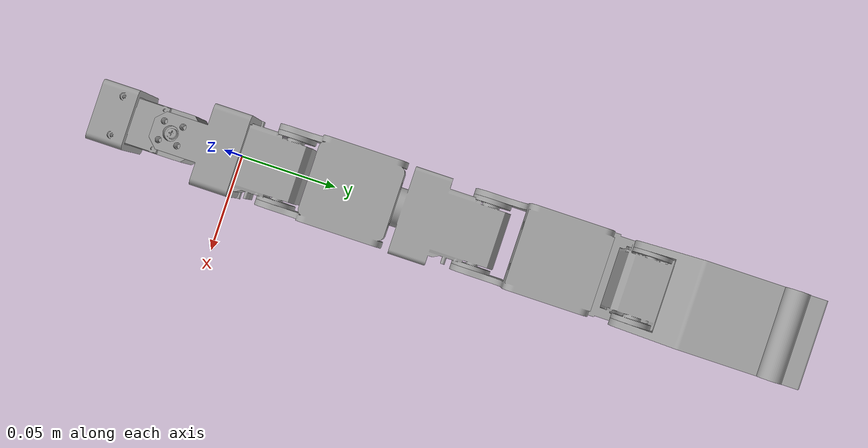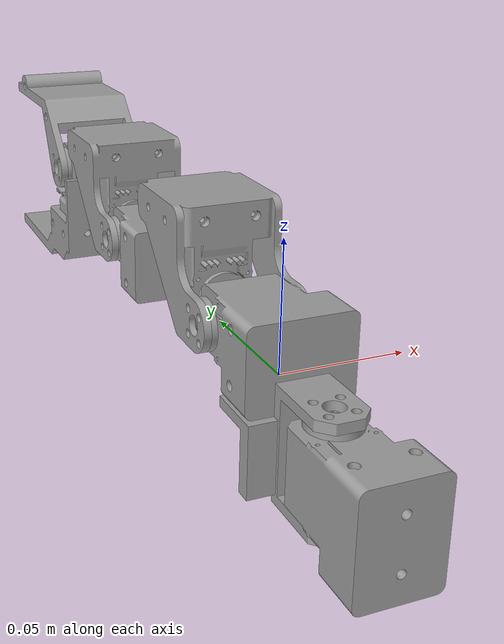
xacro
<?xml version="1.0" ?>
<robot name="arm_test_main" xmlns:xacro="http://www.ros.org/wiki/xacro">

<xacro:include filename="/home/keigo/komarm/robots/komarm/urdf/materials.xacro" />
<xacro:include filename="/home/keigo/komarm/robots/komarm/urdf/arm_test_main.trans" />
<link name="base_link">
  <inertial>
    <origin xyz="0.0003499999845567354 -0.055451634605518364 -0.01655773729685415" rpy="0 0 0"/>
    <mass value="0.3893898243402566"/>
    <inertia ixx="0.000131" iyy="7.1e-05" izz="0.000111" ixy="-0.0" iyz="-2e-06" ixz="-0.0"/>
  </inertial>
  <visual>
    <origin xyz="0 0 0" rpy="0 0 0"/>
    <geometry>
      <mesh filename="package://arm_test_main_description/meshes/base_link.stl" scale="0.001 0.001 0.001"/>
    </geometry>
    <material name="steel_satin"/>
  </visual>
  <collision>
    <origin xyz="0 0 0" rpy="0 0 0"/>
    <geometry>
      <mesh filename="package://arm_test_main_description/meshes/base_link.stl" scale="0.001 0.001 0.001"/>
    </geometry>
  </collision>
</link>

<link name="pitch_1_test_v5_1">
  <inertial>
    <origin xyz="-0.0002232261084468942 0.037799318734209816 -0.0010892901314620007" rpy="0 0 0"/>
    <mass value="0.5173712582672985"/>
    <inertia ixx="0.000268" iyy="0.000174" izz="0.000212" ixy="2e-06" iyz="-6.3e-05" ixz="1e-06"/>
  </inertial>
  <visual>
    <origin xyz="-0.00035 0.0369 -0.0062" rpy="0 0 0"/>
    <geometry>
      <mesh filename="package://arm_test_main_description/meshes/pitch_1_test_v5_1.stl" scale="0.001 0.001 0.001"/>
    </geometry>
    <material name="steel_satin"/>
  </visual>
  <collision>
    <origin xyz="-0.00035 0.0369 -0.0062" rpy="0 0 0"/>
    <geometry>
      <mesh filename="package://arm_test_main_description/meshes/pitch_1_test_v5_1.stl" scale="0.001 0.001 0.001"/>
    </geometry>
  </collision>
</link>

<link name="hand_finger_v1_1">
  <inertial>
    <origin xyz="-0.02170000000000309 0.036124214048086134 0.024494705961264657" rpy="0 0 0"/>
    <mass value="0.18407843738656002"/>
    <inertia ixx="0.000116" iyy="5e-05" izz="0.000135" ixy="0.0" iyz="-2.8e-05" ixz="0.0"/>
  </inertial>
  <visual>
    <origin xyz="-0.0215 -0.20995 -0.02465" rpy="0 0 0"/>
    <geometry>
      <mesh filename="package://arm_test_main_description/meshes/hand_finger_v1_1.stl" scale="0.001 0.001 0.001"/>
    </geometry>
    <material name="steel_satin"/>
  </visual>
  <collision>
    <origin xyz="-0.0215 -0.20995 -0.02465" rpy="0 0 0"/>
    <geometry>
      <mesh filename="package://arm_test_main_description/meshes/hand_finger_v1_1.stl" scale="0.001 0.001 0.001"/>
    </geometry>
  </collision>
</link>

<link name="roll_1_test_v11_1">
  <inertial>
    <origin xyz="-0.02120000001136538 0.03553001060803644 0.017590075270092268" rpy="0 0 0"/>
    <mass value="0.45569427768407117"/>
    <inertia ixx="0.000164" iyy="0.00015" izz="0.00013" ixy="-0.0" iyz="-1.1e-05" ixz="0.0"/>
  </inertial>
  <visual>
    <origin xyz="-0.0207 -0.0253 -0.01165" rpy="0 0 0"/>
    <geometry>
      <mesh filename="package://arm_test_main_description/meshes/roll_1_test_v11_1.stl" scale="0.001 0.001 0.001"/>
    </geometry>
    <material name="steel_satin"/>
  </visual>
  <collision>
    <origin xyz="-0.0207 -0.0253 -0.01165" rpy="0 0 0"/>
    <geometry>
      <mesh filename="package://arm_test_main_description/meshes/roll_1_test_v11_1.stl" scale="0.001 0.001 0.001"/>
    </geometry>
  </collision>
</link>

<link name="pitch_2_test_v1_1">
  <inertial>
    <origin xyz="0.0003543930189758741 0.026889206855970238 -2.973126154992567e-10" rpy="0 0 0"/>
    <mass value="0.4049688490988578"/>
    <inertia ixx="0.000118" iyy="7.6e-05" izz="0.000143" ixy="2e-06" iyz="-0.0" ixz="0.0"/>
  </inertial>
  <visual>
    <origin xyz="0.0005 -0.0817 -0.01165" rpy="0 0 0"/>
    <geometry>
      <mesh filename="package://arm_test_main_description/meshes/pitch_2_test_v1_1.stl" scale="0.001 0.001 0.001"/>
    </geometry>
    <material name="steel_satin"/>
  </visual>
  <collision>
    <origin xyz="0.0005 -0.0817 -0.01165" rpy="0 0 0"/>
    <geometry>
      <mesh filename="package://arm_test_main_description/meshes/pitch_2_test_v1_1.stl" scale="0.001 0.001 0.001"/>
    </geometry>
  </collision>
</link>

<link name="roll_2_test_v1_1">
  <inertial>
    <origin xyz="-0.021200000011342975 0.03553313851539064 0.01761719047417286" rpy="0 0 0"/>
    <mass value="0.45660397486942944"/>
    <inertia ixx="0.000165" iyy="0.000151" izz="0.00013" ixy="-0.0" iyz="-1.1e-05" ixz="0.0"/>
  </inertial>
  <visual>
    <origin xyz="-0.0205 -0.1279 -0.01165" rpy="0 0 0"/>
    <geometry>
      <mesh filename="package://arm_test_main_description/meshes/roll_2_test_v1_1.stl" scale="0.001 0.001 0.001"/>
    </geometry>
    <material name="steel_satin"/>
  </visual>
  <collision>
    <origin xyz="-0.0205 -0.1279 -0.01165" rpy="0 0 0"/>
    <geometry>
      <mesh filename="package://arm_test_main_description/meshes/roll_2_test_v1_1.stl" scale="0.001 0.001 0.001"/>
    </geometry>
  </collision>
</link>

<link name="hand_unit_v1_1">
  <inertial>
    <origin xyz="-0.00015861142460390045 0.032553601595988524 -0.014188170173816673" rpy="0 0 0"/>
    <mass value="0.6163609537224307"/>
    <inertia ixx="0.000491" iyy="0.000278" izz="0.000371" ixy="1e-06" iyz="0.000125" ixz="-3e-06"/>
  </inertial>
  <visual>
    <origin xyz="0.0007 -0.1843 -0.01165" rpy="0 0 0"/>
    <geometry>
      <mesh filename="package://arm_test_main_description/meshes/hand_unit_v1_1.stl" scale="0.001 0.001 0.001"/>
    </geometry>
    <material name="steel_satin"/>
  </visual>
  <collision>
    <origin xyz="0.0007 -0.1843 -0.01165" rpy="0 0 0"/>
    <geometry>
      <mesh filename="package://arm_test_main_description/meshes/hand_unit_v1_1.stl" scale="0.001 0.001 0.001"/>
    </geometry>
  </collision>
</link>

<joint name="Revolute 1" type="revolute">
  <origin xyz="0.00035 -0.0369 0.0062" rpy="0 0 0"/>
  <parent link="base_link"/>
  <child link="pitch_1_test_v5_1"/>
  <axis xyz="0.0 0.0 -1.0"/>
  <limit upper="1.570796" lower="-1.570796" effort="100" velocity="100"/>
</joint>

<joint name="Revolute 6" type="revolute">
  <origin xyz="0.0222 0.02565 0.013" rpy="0 0 0"/>
  <parent link="hand_unit_v1_1"/>
  <child link="hand_finger_v1_1"/>
  <axis xyz="-1.0 -0.0 0.0"/>
  <limit upper="0.872665" lower="-1.047198" effort="100" velocity="100"/>
</joint>

<joint name="Revolute 2" type="revolute">
  <origin xyz="0.02035 0.0622 0.00545" rpy="0 0 0"/>
  <parent link="pitch_1_test_v5_1"/>
  <child link="roll_1_test_v11_1"/>
  <axis xyz="-1.0 -0.0 -0.0"/>
  <limit upper="1.745329" lower="-1.396263" effort="100" velocity="100"/>
</joint>

<joint name="Revolute 3" type="continuous">
  <origin xyz="-0.0212 0.0564 0.0" rpy="0 0 0"/>
  <parent link="roll_1_test_v11_1"/>
  <child link="pitch_2_test_v1_1"/>
  <axis xyz="-0.0 1.0 -0.0"/>
</joint>

<joint name="Revolute 4" type="revolute">
  <origin xyz="0.021 0.0462 0.0" rpy="0 0 0"/>
  <parent link="pitch_2_test_v1_1"/>
  <child link="roll_2_test_v1_1"/>
  <axis xyz="-1.0 0.0 -0.0"/>
  <limit upper="1.919862" lower="-1.396263" effort="100" velocity="100"/>
</joint>

<joint name="Revolute 5" type="continuous">
  <origin xyz="-0.0212 0.0564 0.0" rpy="0 0 0"/>
  <parent link="roll_2_test_v1_1"/>
  <child link="hand_unit_v1_1"/>
  <axis xyz="0.0 -1.0 -0.0"/>
</joint>

</robot>

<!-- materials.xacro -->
<robot name="arm_test_main" xmlns:xacro="http://www.ros.org/wiki/xacro" >

<material name="silver_default">
  <color rgba="0.700 0.700 0.700 1.000"/>
</material>
<material name="steel_satin">
  <color rgba="0.6274509803921569 0.6274509803921569 0.6274509803921569 1.0"/>
</material>

</robot>
